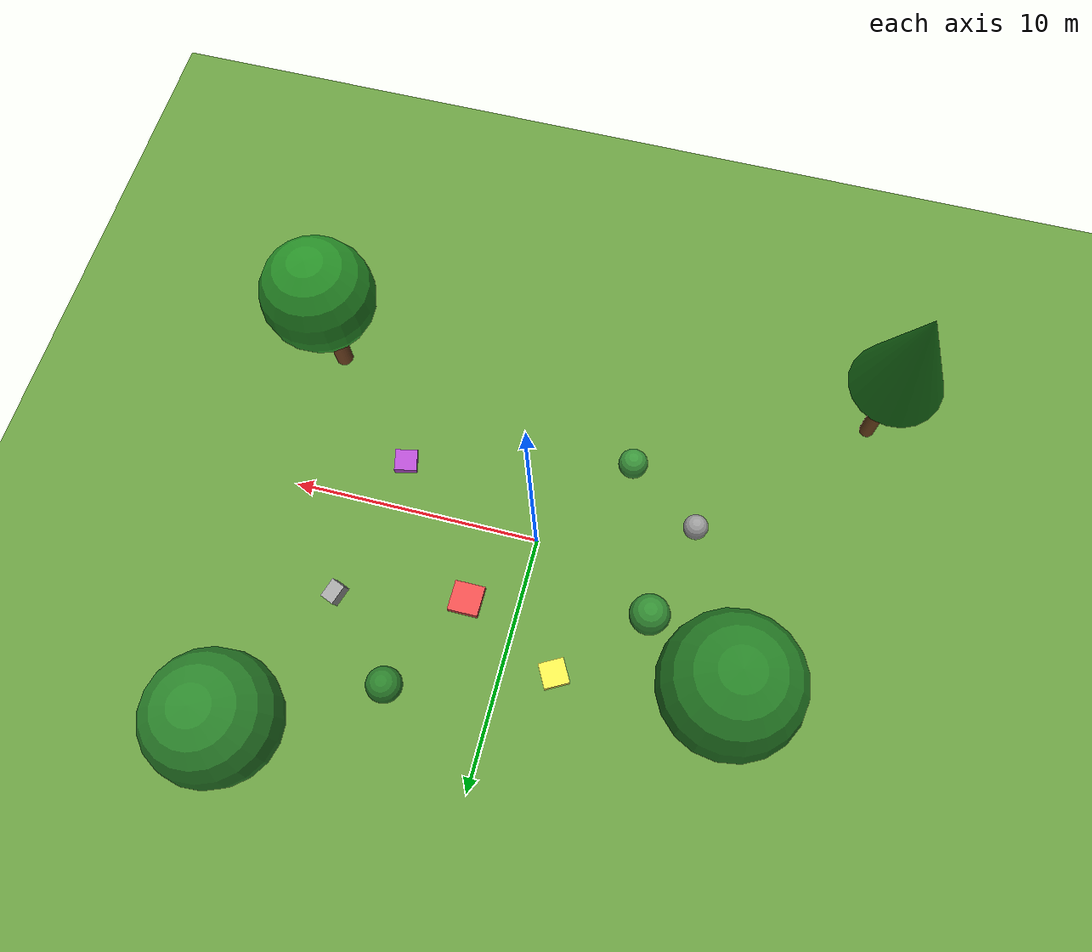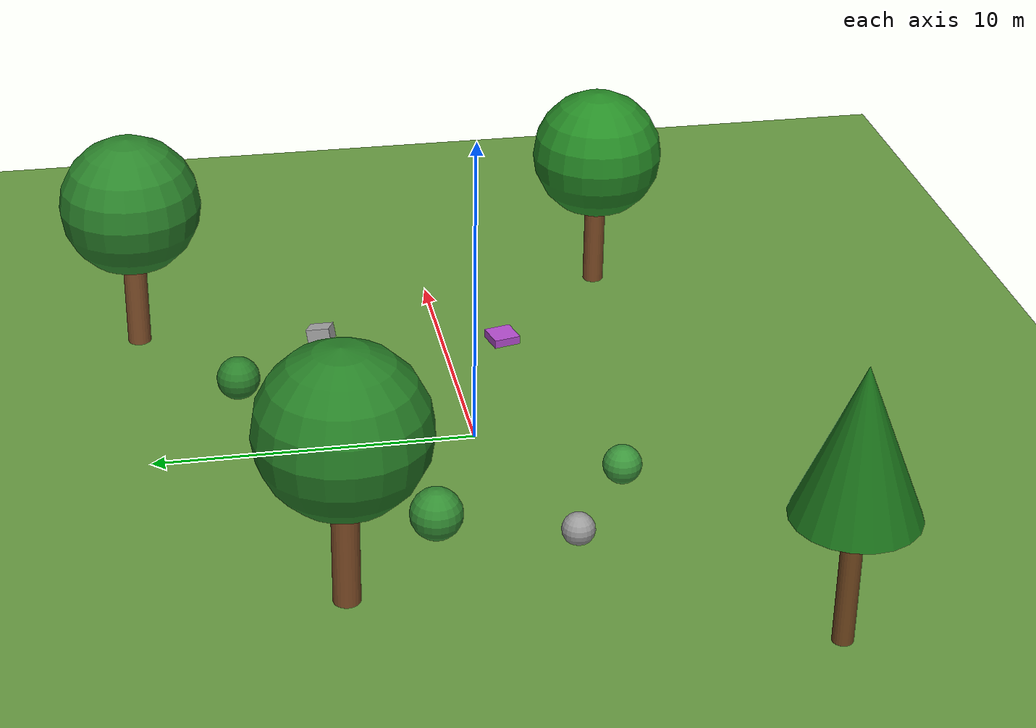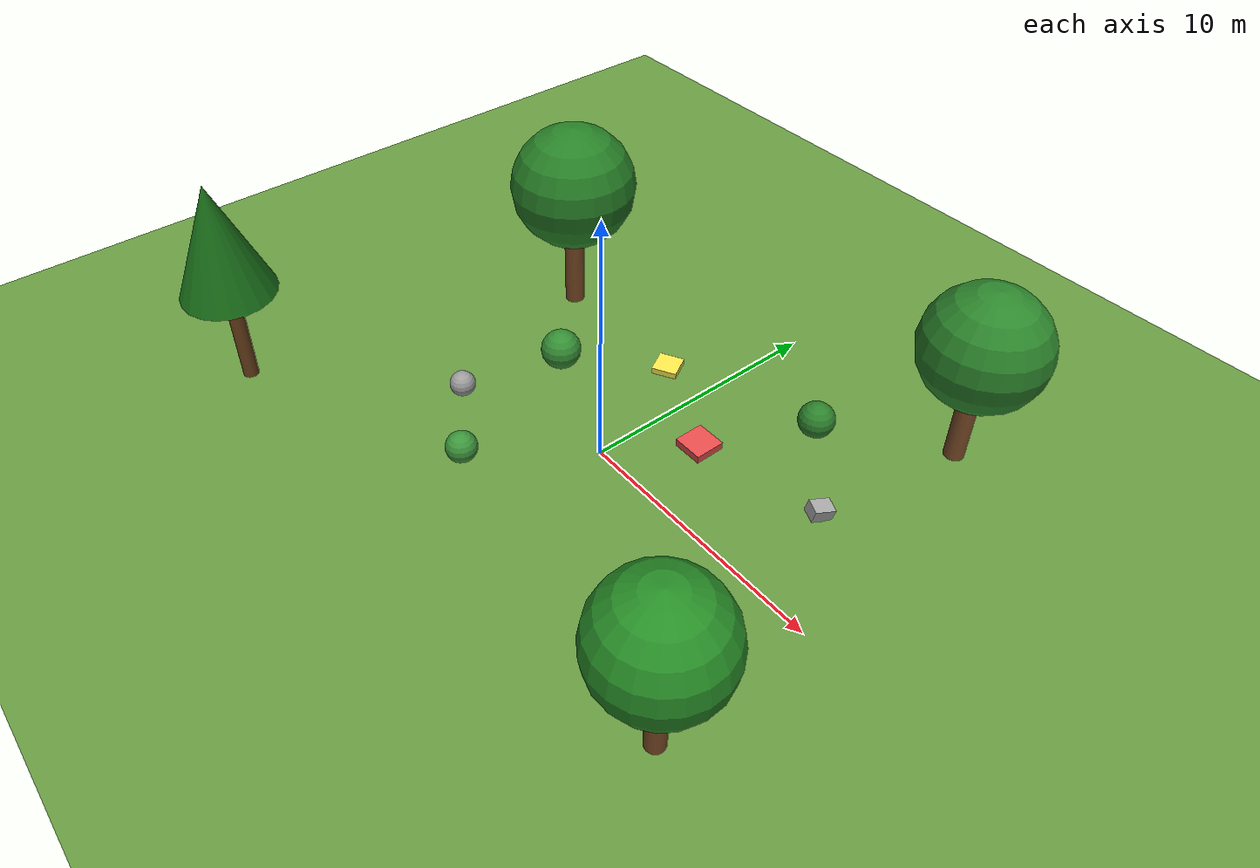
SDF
<sdf version="1.6">
 <world name="multicopter">
  <physics name="4ms" type="ignored">
   <max_step_size>0.004</max_step_size>
   <real_time_factor>1.0</real_time_factor>
  </physics>
  <plugin filename="gz-sim-physics-system" name="gz::sim::systems::Physics"/>
  <plugin filename="gz-sim-scene-broadcaster-system" name="gz::sim::systems::SceneBroadcaster"/>
  <plugin filename="gz-sim-user-commands-system" name="gz::sim::systems::UserCommands"/>
  <plugin filename="gz-sim-sensors-system" name="gz::sim::systems::Sensors">
   <render_engine>ogre2</render_engine>
  </plugin>
  <plugin filename="gz-sim-imu-system" name="gz::sim::systems::Imu"/>
  <plugin filename="gz-sim-wind-system" name="gz::sim::systems::Wind"/>
  <wind><linear_velocity>0 0 0</linear_velocity></wind>
  <plugin filename="gz-sim8-pose-publisher-system" name="gz::sim::systems::PosePublisher">
   <publish_nested_model_pose>true</publish_nested_model_pose>
   <publish_link_pose>false</publish_link_pose>
   <publish_collision_pose>false</publish_collision_pose>
   <publish_visual_pose>false</publish_visual_pose>
   <use_pose_vector_msg>true</use_pose_vector_msg>
   <static_publisher>false</static_publisher>
   <update_frequency>50</update_frequency>
  </plugin>
  <light type="directional" name="sun">
   <pose>0 0 10 0 0 0</pose>
   <diffuse>0.8 0.8 0.8 1</diffuse>
   <specular>0.2 0.2 0.2 1</specular>
   <attenuation>
    <range>1000</range>
    <constant>0.9</constant>
    <linear>0.01</linear>
    <quadratic>0.001</quadratic>
   </attenuation>
   <direction>-0.5 0.1 -0.9</direction>
  </light>
  <model name="ground_plane">
   <static>true</static>
   <link name="link">
    <collision name="collision">
     <geometry><plane><normal>0 0 1</normal><size>150 150</size></plane></geometry>
    </collision>
    <visual name="visual">
     <geometry><plane><normal>0 0 1</normal><size>150 150</size></plane></geometry>
     <material>
      <ambient>0.3 0.5 0.2 1</ambient>
      <diffuse>0.4 0.6 0.25 1</diffuse>
      <specular>0.05 0.05 0.05 1</specular>
     </material>
    </visual>
   </link>
  </model>
  <model name="tree_oak_1">
   <static>true</static>
   <pose>-8 5 0 0 0 0</pose>
   <link name="trunk">
    <visual name="trunk_visual">
     <geometry><cylinder><radius>0.4</radius><length>4.0</length></cylinder></geometry>
     <pose>0 0 2.0 0 0 0</pose>
     <material><ambient>0.4 0.25 0.1 1</ambient><diffuse>0.5 0.3 0.15 1</diffuse></material>
    </visual>
    <collision name="trunk_collision">
     <geometry><cylinder><radius>0.4</radius><length>4.0</length></cylinder></geometry>
     <pose>0 0 2.0 0 0 0</pose>
    </collision>
    <visual name="foliage_visual">
     <geometry><sphere><radius>2.5</radius></sphere></geometry>
     <pose>0 0 5.5 0 0 0</pose>
     <material><ambient>0.1 0.4 0.1 1</ambient><diffuse>0.15 0.5 0.15 1</diffuse></material>
    </visual>
   </link>
  </model>
  <model name="tree_oak_2">
   <static>true</static>
   <pose>10 -6 0 0 0 0.5</pose>
   <link name="trunk">
    <visual name="trunk_visual">
     <geometry><cylinder><radius>0.35</radius><length>3.5</length></cylinder></geometry>
     <pose>0 0 1.75 0 0 0</pose>
     <material><ambient>0.4 0.25 0.1 1</ambient><diffuse>0.5 0.3 0.15 1</diffuse></material>
    </visual>
    <collision name="trunk_collision">
     <geometry><cylinder><radius>0.35</radius><length>3.5</length></cylinder></geometry>
     <pose>0 0 1.75 0 0 0</pose>
    </collision>
    <visual name="foliage_visual">
     <geometry><sphere><radius>2.2</radius></sphere></geometry>
     <pose>0 0 4.8 0 0 0</pose>
     <material><ambient>0.1 0.45 0.1 1</ambient><diffuse>0.15 0.55 0.15 1</diffuse></material>
    </visual>
   </link>
  </model>
  <model name="tree_pine_1">
   <static>true</static>
   <pose>-12 -8 0 0 0 1.2</pose>
   <link name="trunk">
    <visual name="trunk_visual">
     <geometry><cylinder><radius>0.3</radius><length>5.0</length></cylinder></geometry>
     <pose>0 0 2.5 0 0 0</pose>
     <material><ambient>0.35 0.22 0.08 1</ambient><diffuse>0.45 0.28 0.12 1</diffuse></material>
    </visual>
    <collision name="trunk_collision">
     <geometry><cylinder><radius>0.3</radius><length>5.0</length></cylinder></geometry>
     <pose>0 0 2.5 0 0 0</pose>
    </collision>
    <visual name="foliage_visual">
     <geometry><cone><radius>1.8</radius><length>4.5</length></cone></geometry>
     <pose>0 0 6.25 0 0 0</pose>
     <material><ambient>0.05 0.35 0.05 1</ambient><diffuse>0.1 0.45 0.1 1</diffuse></material>
    </visual>
   </link>
  </model>
  <model name="tree_oak_3">
   <static>true</static>
   <pose>8 10 0 0 0 2.1</pose>
   <link name="trunk">
    <visual name="trunk_visual">
     <geometry><cylinder><radius>0.38</radius><length>3.8</length></cylinder></geometry>
     <pose>0 0 1.9 0 0 0</pose>
     <material><ambient>0.42 0.27 0.12 1</ambient><diffuse>0.52 0.32 0.17 1</diffuse></material>
    </visual>
    <collision name="trunk_collision">
     <geometry><cylinder><radius>0.38</radius><length>3.8</length></cylinder></geometry>
     <pose>0 0 1.9 0 0 0</pose>
    </collision>
    <visual name="foliage_visual">
     <geometry><sphere><radius>2.3</radius></sphere></geometry>
     <pose>0 0 5.0 0 0 0</pose>
     <material><ambient>0.12 0.42 0.12 1</ambient><diffuse>0.17 0.52 0.17 1</diffuse></material>
    </visual>
   </link>
  </model>
  <model name="bush_1">
   <static>true</static>
   <pose>-5 2 0 0 0 0</pose>
   <link name="foliage">
    <visual name="visual">
     <geometry><sphere><radius>0.8</radius></sphere></geometry>
     <pose>0 0 0.6 0 0 0</pose>
     <material><ambient>0.15 0.45 0.15 1</ambient><diffuse>0.2 0.55 0.2 1</diffuse></material>
    </visual>
    <collision name="collision">
     <geometry><sphere><radius>0.8</radius></sphere></geometry>
     <pose>0 0 0.6 0 0 0</pose>
    </collision>
   </link>
  </model>
  <model name="bush_2">
   <static>true</static>
   <pose>4 7 0 0 0 0.8</pose>
   <link name="foliage">
    <visual name="visual">
     <geometry><sphere><radius>0.7</radius></sphere></geometry>
     <pose>0 0 0.5 0 0 0</pose>
     <material><ambient>0.12 0.4 0.12 1</ambient><diffuse>0.17 0.5 0.17 1</diffuse></material>
    </visual>
   </link>
  </model>
  <model name="bush_3">
   <static>true</static>
   <pose>-3 -4 0 0 0 1.5</pose>
   <link name="foliage">
    <visual name="visual">
     <geometry><sphere><radius>0.6</radius></sphere></geometry>
     <pose>0 0 0.45 0 0 0</pose>
     <material><ambient>0.18 0.48 0.18 1</ambient><diffuse>0.23 0.58 0.23 1</diffuse></material>
    </visual>
   </link>
  </model>
  <model name="flowers_red">
   <static>true</static>
   <pose>2 3 0 0 0 0</pose>
   <link name="flowers">
    <visual name="visual">
     <geometry><box><size>1.2 1.2 0.3</size></box></geometry>
     <pose>0 0 0.15 0 0 0</pose>
     <material><ambient>0.8 0.2 0.2 1</ambient><diffuse>0.9 0.3 0.3 1</diffuse></material>
    </visual>
   </link>
  </model>
  <model name="flowers_yellow">
   <static>true</static>
   <pose>-2 5 0 0 0 0.5</pose>
   <link name="flowers">
    <visual name="visual">
     <geometry><box><size>1.0 1.0 0.25</size></box></geometry>
     <pose>0 0 0.125 0 0 0</pose>
     <material><ambient>0.9 0.8 0.2 1</ambient><diffuse>1.0 0.9 0.3 1</diffuse></material>
    </visual>
   </link>
  </model>
  <model name="flowers_purple">
   <static>true</static>
   <pose>6 -2 0 0 0 1.8</pose>
   <link name="flowers">
    <visual name="visual">
     <geometry><box><size>0.9 0.9 0.28</size></box></geometry>
     <pose>0 0 0.14 0 0 0</pose>
     <material><ambient>0.6 0.2 0.7 1</ambient><diffuse>0.7 0.3 0.8 1</diffuse></material>
    </visual>
   </link>
  </model>
  <model name="rock_1">
   <static>true</static>
   <pose>-6 -2 0 0 0 0.3</pose>
   <link name="rock">
    <visual name="visual">
     <geometry><sphere><radius>0.5</radius></sphere></geometry>
     <pose>0 0 0.3 0 0 0</pose>
     <material><ambient>0.5 0.5 0.5 1</ambient><diffuse>0.6 0.6 0.6 1</diffuse></material>
    </visual>
    <collision name="collision">
     <geometry><sphere><radius>0.5</radius></sphere></geometry>
     <pose>0 0 0.3 0 0 0</pose>
    </collision>
   </link>
  </model>
  <model name="rock_2">
   <static>true</static>
   <pose>7 4 0 0 0 1.2</pose>
   <link name="rock">
    <visual name="visual">
     <geometry><box><size>0.8 0.6 0.5</size></box></geometry>
     <pose>0 0 0.25 0.1 0.2 0</pose>
     <material><ambient>0.55 0.55 0.55 1</ambient><diffuse>0.65 0.65 0.65 1</diffuse></material>
    </visual>
    <collision name="collision">
     <geometry><box><size>0.8 0.6 0.5</size></box></geometry>
     <pose>0 0 0.25 0.1 0.2 0</pose>
    </collision>
   </link>
  </model>
 </world>
</sdf>
